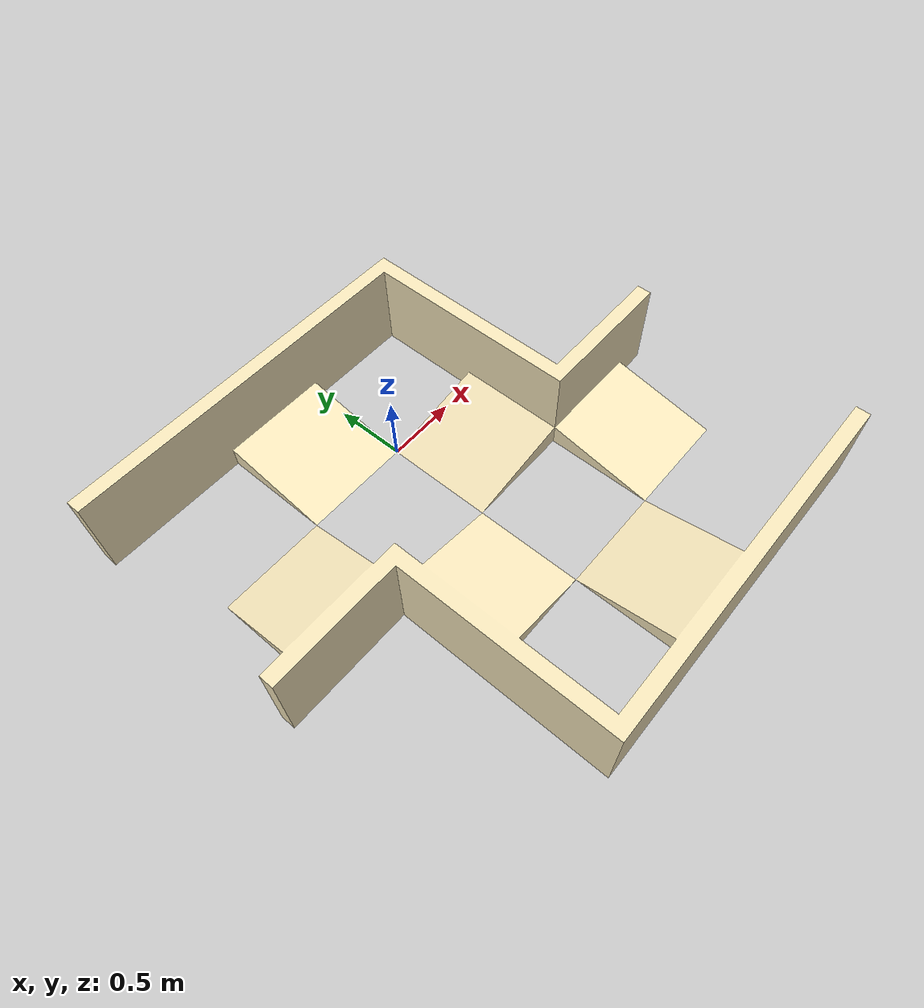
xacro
<?xml version="1.0"?>
<robot name="maze2" xmlns:xacro="http://www.ros.org/wiki/xacro">

  <link name="maze2_link">
    <visual>
      <geometry>
        <mesh filename="package://qm_description/meshes/mazes/maze_2.stl" scale="0.001 0.001 0.001"/>
      </geometry>
      <material name="ocher">
          <color rgba="0.949 0.890 0.722 1"/>
      </material>
    </visual>
    <collision>
      <geometry>
        <mesh filename="package://qm_description/meshes/mazes/maze_2.stl" scale="0.001 0.001 0.001"/>
      </geometry>
      <surface>
        <friction>
            <ode>
                <mu>0.7</mu>        <!-- Primary friction coefficient -->
                <mu2>0.7</mu2>      <!-- Secondary friction coefficient -->
            </ode>
        </friction>
      </surface>
    </collision>
    <inertial>
      <mass value="1.0"/>
      <inertia ixx="0.1" ixy="0.0" ixz="0.0" iyy="0.1" iyz="0.0" izz="0.1"/>
    </inertial>
  </link>

  <gazebo reference="maze2_link">
    <material>Gazebo/Gray</material>
  </gazebo>

  <!-- Wall fixed to the world-->
  <link name="world"/>

  <joint name="base_link_fixed" type="fixed">
    <parent link="world"/>
    <child link="maze2_link"/>
  </joint>

</robot>
